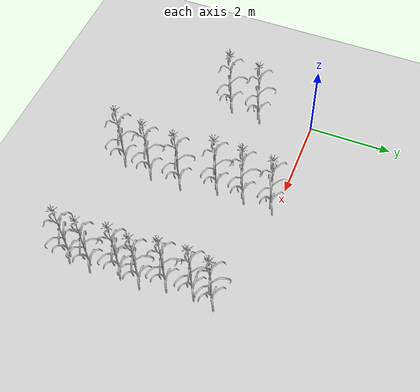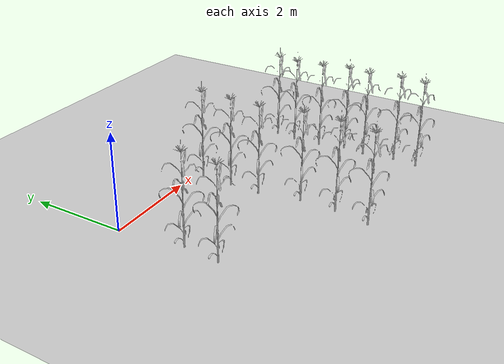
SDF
<sdf version="1.6">
 <world name="default">
  <model name="ground_plane">
   <static>1</static>
   <link name="link">
    <collision name="collision">
     <geometry><plane><normal>0 0 1</normal><size>100 100</size></plane></geometry>
     <surface>
      <contact><collide_bitmask>65535</collide_bitmask></contact>
      <friction><ode><mu>100</mu><mu2>50</mu2></ode></friction>
     </surface>
    </collision>
    <visual name="visual">
     <cast_shadows>0</cast_shadows>
     <geometry><plane><normal>0 0 1</normal><size>100 100</size></plane></geometry>
     <material>
      <script><uri>file://media/materials/scripts/gazebo.material</uri><name>Gazebo/Grey</name></script>
     </material>
    </visual>
   </link>
  </model>
  <model name="corn_stalk2_clone_0">
   <static>1</static>
   <link name="corn_stalk2_link">
    <collision name="collision">
     <geometry><mesh><scale>1 1 1</scale><uri>model://corn_type2/meshes/model.stl</uri></mesh></geometry>
    </collision>
    <visual name="corn_stalk2_visual">
     <geometry><mesh><uri>model://corn_type2/meshes/model.stl</uri><scale>1 1 1</scale></mesh></geometry>
     <material>
      <script>
       <uri>model://corn_type2/materials/scripts</uri>
       <uri>model://corn_type2/materials/textures</uri>
       <name>corn_type2/Diffuse</name>
      </script>
     </material>
    </visual>
   </link>
   <pose>0.113847 -2.10833 0 0 -0 0</pose>
  </model>
  <model name="corn_stalk2_clone_1">
   <static>1</static>
   <link name="corn_stalk2_link">
    <collision name="collision">
     <geometry><mesh><scale>1 1 1</scale><uri>model://corn_type2/meshes/model.stl</uri></mesh></geometry>
    </collision>
    <visual name="corn_stalk2_visual">
     <geometry><mesh><uri>model://corn_type2/meshes/model.stl</uri><scale>1 1 1</scale></mesh></geometry>
     <material>
      <script>
       <uri>model://corn_type2/materials/scripts</uri>
       <uri>model://corn_type2/materials/textures</uri>
       <name>corn_type2/Diffuse</name>
      </script>
     </material>
    </visual>
   </link>
   <pose>0.190735 -1.34914 0 0 -0 0</pose>
  </model>
  <model name="corn_stalk2_clone_9">
   <static>1</static>
   <link name="corn_stalk2_link">
    <collision name="collision">
     <geometry><mesh><scale>1 1 1</scale><uri>model://corn_type2/meshes/model.stl</uri></mesh></geometry>
    </collision>
    <visual name="corn_stalk2_visual">
     <geometry><mesh><uri>model://corn_type2/meshes/model.stl</uri><scale>1 1 1</scale></mesh></geometry>
     <material>
      <script>
       <uri>model://corn_type2/materials/scripts</uri>
       <uri>model://corn_type2/materials/textures</uri>
       <name>corn_type2/Diffuse</name>
      </script>
     </material>
    </visual>
   </link>
   <pose>2.57222 -3.86762 0 0 -0 0</pose>
  </model>
  <model name="corn_stalk2_clone_10">
   <static>1</static>
   <link name="corn_stalk2_link">
    <collision name="collision">
     <geometry><mesh><scale>1 1 1</scale><uri>model://corn_type2/meshes/model.stl</uri></mesh></geometry>
    </collision>
    <visual name="corn_stalk2_visual">
     <geometry><mesh><uri>model://corn_type2/meshes/model.stl</uri><scale>1 1 1</scale></mesh></geometry>
     <material>
      <script>
       <uri>model://corn_type2/materials/scripts</uri>
       <uri>model://corn_type2/materials/textures</uri>
       <name>corn_type2/Diffuse</name>
      </script>
     </material>
    </visual>
   </link>
   <pose>2.70126 -3.14208 0 0 -0 0</pose>
  </model>
  <model name="corn_stalk2_clone_11">
   <static>1</static>
   <link name="corn_stalk2_link">
    <collision name="collision">
     <geometry><mesh><scale>1 1 1</scale><uri>model://corn_type2/meshes/model.stl</uri></mesh></geometry>
    </collision>
    <visual name="corn_stalk2_visual">
     <geometry><mesh><uri>model://corn_type2/meshes/model.stl</uri><scale>1 1 1</scale></mesh></geometry>
     <material>
      <script>
       <uri>model://corn_type2/materials/scripts</uri>
       <uri>model://corn_type2/materials/textures</uri>
       <name>corn_type2/Diffuse</name>
      </script>
     </material>
    </visual>
   </link>
   <pose>2.72022 -2.3846 0 0 -0 0</pose>
  </model>
  <model name="corn_stalk2_clone_12">
   <static>1</static>
   <link name="corn_stalk2_link">
    <collision name="collision">
     <geometry><mesh><scale>1 1 1</scale><uri>model://corn_type2/meshes/model.stl</uri></mesh></geometry>
    </collision>
    <visual name="corn_stalk2_visual">
     <geometry><mesh><uri>model://corn_type2/meshes/model.stl</uri><scale>1 1 1</scale></mesh></geometry>
     <material>
      <script>
       <uri>model://corn_type2/materials/scripts</uri>
       <uri>model://corn_type2/materials/textures</uri>
       <name>corn_type2/Diffuse</name>
      </script>
     </material>
    </visual>
   </link>
   <pose>2.53232 -1.53 0 0 -0 0</pose>
  </model>
  <model name="corn_stalk2_clone_13">
   <static>1</static>
   <link name="corn_stalk2_link">
    <collision name="collision">
     <geometry><mesh><scale>1 1 1</scale><uri>model://corn_type2/meshes/model.stl</uri></mesh></geometry>
    </collision>
    <visual name="corn_stalk2_visual">
     <geometry><mesh><uri>model://corn_type2/meshes/model.stl</uri><scale>1 1 1</scale></mesh></geometry>
     <material>
      <script>
       <uri>model://corn_type2/materials/scripts</uri>
       <uri>model://corn_type2/materials/textures</uri>
       <name>corn_type2/Diffuse</name>
      </script>
     </material>
    </visual>
   </link>
   <pose>2.54883 -0.872073 0 0 -0 0</pose>
  </model>
  <model name="corn_stalk2_clone_14">
   <static>1</static>
   <link name="corn_stalk2_link">
    <collision name="collision">
     <geometry><mesh><scale>1 1 1</scale><uri>model://corn_type2/meshes/model.stl</uri></mesh></geometry>
    </collision>
    <visual name="corn_stalk2_visual">
     <geometry><mesh><uri>model://corn_type2/meshes/model.stl</uri><scale>1 1 1</scale></mesh></geometry>
     <material>
      <script>
       <uri>model://corn_type2/materials/scripts</uri>
       <uri>model://corn_type2/materials/textures</uri>
       <name>corn_type2/Diffuse</name>
      </script>
     </material>
    </visual>
   </link>
   <pose>2.58231 -0.167889 0 0 -0 0</pose>
  </model>
  <model name="corn_stalk2_clone_20">
   <static>1</static>
   <link name="corn_stalk2_link">
    <collision name="collision">
     <geometry><mesh><scale>1 1 1</scale><uri>model://corn_type2/meshes/model.stl</uri></mesh></geometry>
    </collision>
    <visual name="corn_stalk2_visual">
     <geometry><mesh><uri>model://corn_type2/meshes/model.stl</uri><scale>1 1 1</scale></mesh></geometry>
     <material>
      <script>
       <uri>model://corn_type2/materials/scripts</uri>
       <uri>model://corn_type2/materials/textures</uri>
       <name>corn_type2/Diffuse</name>
      </script>
     </material>
    </visual>
   </link>
   <pose>5.32415 -3.86132 0 0 -0 0</pose>
  </model>
  <model name="corn_stalk2_clone_21">
   <static>1</static>
   <link name="corn_stalk2_link">
    <collision name="collision">
     <geometry><mesh><scale>1 1 1</scale><uri>model://corn_type2/meshes/model.stl</uri></mesh></geometry>
    </collision>
    <visual name="corn_stalk2_visual">
     <geometry><mesh><uri>model://corn_type2/meshes/model.stl</uri><scale>1 1 1</scale></mesh></geometry>
     <material>
      <script>
       <uri>model://corn_type2/materials/scripts</uri>
       <uri>model://corn_type2/materials/textures</uri>
       <name>corn_type2/Diffuse</name>
      </script>
     </material>
    </visual>
   </link>
   <pose>5.36762 -3.3459 0 0 -0 0</pose>
  </model>
  <model name="corn_stalk2_clone_22">
   <static>1</static>
   <link name="corn_stalk2_link">
    <collision name="collision">
     <geometry><mesh><scale>1 1 1</scale><uri>model://corn_type2/meshes/model.stl</uri></mesh></geometry>
    </collision>
    <visual name="corn_stalk2_visual">
     <geometry><mesh><uri>model://corn_type2/meshes/model.stl</uri><scale>1 1 1</scale></mesh></geometry>
     <material>
      <script>
       <uri>model://corn_type2/materials/scripts</uri>
       <uri>model://corn_type2/materials/textures</uri>
       <name>corn_type2/Diffuse</name>
      </script>
     </material>
    </visual>
   </link>
   <pose>5.27837 -2.66369 0 0 -0 0</pose>
  </model>
  <model name="corn_stalk2_clone_23">
   <static>1</static>
   <link name="corn_stalk2_link">
    <collision name="collision">
     <geometry><mesh><scale>1 1 1</scale><uri>model://corn_type2/meshes/model.stl</uri></mesh></geometry>
    </collision>
    <visual name="corn_stalk2_visual">
     <geometry><mesh><uri>model://corn_type2/meshes/model.stl</uri><scale>1 1 1</scale></mesh></geometry>
     <material>
      <script>
       <uri>model://corn_type2/materials/scripts</uri>
       <uri>model://corn_type2/materials/textures</uri>
       <name>corn_type2/Diffuse</name>
      </script>
     </material>
    </visual>
   </link>
   <pose>5.34506 -2.18223 0 0 -0 0</pose>
  </model>
  <model name="corn_stalk2_clone_24">
   <static>1</static>
   <link name="corn_stalk2_link">
    <collision name="collision">
     <geometry><mesh><scale>1 1 1</scale><uri>model://corn_type2/meshes/model.stl</uri></mesh></geometry>
    </collision>
    <visual name="corn_stalk2_visual">
     <geometry><mesh><uri>model://corn_type2/meshes/model.stl</uri><scale>1 1 1</scale></mesh></geometry>
     <material>
      <script>
       <uri>model://corn_type2/materials/scripts</uri>
       <uri>model://corn_type2/materials/textures</uri>
       <name>corn_type2/Diffuse</name>
      </script>
     </material>
    </visual>
   </link>
   <pose>5.20122 -1.6183 0 0 -0 0</pose>
  </model>
  <model name="corn_stalk2_clone_25">
   <static>1</static>
   <link name="corn_stalk2_link">
    <collision name="collision">
     <geometry><mesh><scale>1 1 1</scale><uri>model://corn_type2/meshes/model.stl</uri></mesh></geometry>
    </collision>
    <visual name="corn_stalk2_visual">
     <geometry><mesh><uri>model://corn_type2/meshes/model.stl</uri><scale>1 1 1</scale></mesh></geometry>
     <material>
      <script>
       <uri>model://corn_type2/materials/scripts</uri>
       <uri>model://corn_type2/materials/textures</uri>
       <name>corn_type2/Diffuse</name>
      </script>
     </material>
    </visual>
   </link>
   <pose>5.17485 -1.0016 0 0 -0 0</pose>
  </model>
  <model name="corn_stalk2_clone_26">
   <static>1</static>
   <link name="corn_stalk2_link">
    <collision name="collision">
     <geometry><mesh><scale>1 1 1</scale><uri>model://corn_type2/meshes/model.stl</uri></mesh></geometry>
    </collision>
    <visual name="corn_stalk2_visual">
     <geometry><mesh><uri>model://corn_type2/meshes/model.stl</uri><scale>1 1 1</scale></mesh></geometry>
     <material>
      <script>
       <uri>model://corn_type2/materials/scripts</uri>
       <uri>model://corn_type2/materials/textures</uri>
       <name>corn_type2/Diffuse</name>
      </script>
     </material>
    </visual>
   </link>
   <pose>5.24209 -0.530482 0 0 -0 0</pose>
  </model>
 </world>
</sdf>
